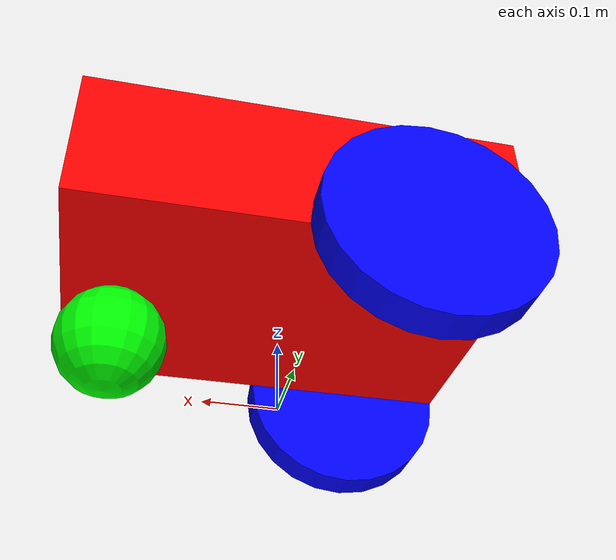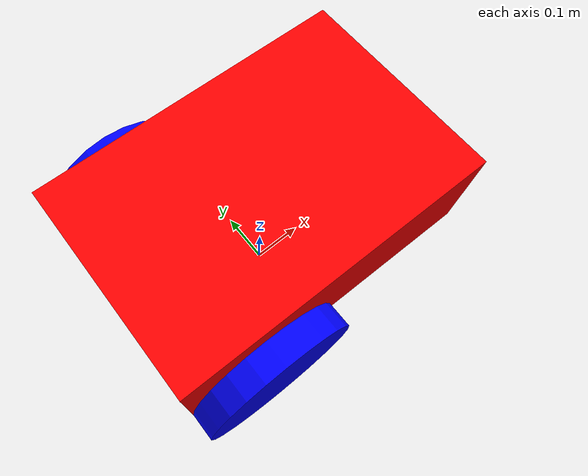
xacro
<?xml version="1.0"?>
<robot name="my_robot" xmlns:xacro="http://www.ros.org/wiki/xacro">

    <xacro:include filename="common_properties.xacro"/>
    <xacro:include filename="mobile_base.xacro"/>
    <xacro:include filename="mobile_base_gazebo.xacro"/>
    <xacro:include filename="camera.xacro"/>

</robot>

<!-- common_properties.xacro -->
<robot xmlns:xacro="http://www.ros.org/wiki/xacro">

    <material name="red">
        <color rgba="1 0 0 1"/>
    </material>

    <material name="green">
        <color rgba="0 1 0 1"/>
    </material>

    <material name="blue">
        <color rgba="0 0 1 1"/>
    </material>

    <material name="grey">
        <color rgba="0.5 0.5 0.5 1"/>
    </material>

    <xacro:property name="base_length" value="0.6"/>
    <xacro:property name="base_breadth" value="0.4"/>
    <xacro:property name="base_height" value="0.2"/>
    <xacro:property name="wheel_radius" value="0.15"/>
    <xacro:property name="wheel_length" value="0.05"/>
    <xacro:property name="caster_wheel_radius" value="${wheel_radius/2}"/>

    <xacro:macro name="box_inertia" params="m l b h xyz rpy">
        <inertial>
            <origin xyz="${xyz}" rpy="${rpy}"/>
            <mass value="${m}"/>
            <inertia ixx="${(1/12)*m*(h*h + l*l)}" ixy="0" ixz="0"
                     iyy="${(1/12)*m*(b*b + l*l)}" iyz="0"
                     izz="${(1/12)*m*(b*b + h*h)}"/>
        </inertial>
    </xacro:macro>

    <xacro:macro name="wheel_inertia" params="m l r xyz rpy">
        <inertial>
            <origin xyz="${xyz}" rpy="${rpy}"/>
            <mass value="${m}"/>
            <inertia ixx="${(1/12)*m*((3*r*r) + l*l)}" ixy="0" ixz="0"
                     iyy="${(1/12)*m*((3*r*r) + l*l)}" iyz="0"
                     izz="${(1/2)*m*r*r}"/>
        </inertial>
    </xacro:macro>

    <xacro:macro name="sphere_inertia" params="m r xyz rpy">
        <inertial>
            <origin xyz="${xyz}" rpy="${rpy}"/>
            <mass value="${m}"/>
            <inertia ixx="${(2/5)*m*r*r}" ixy="0" ixz="0"
                     iyy="${(2/5)*m*r*r}" iyz="0"
                     izz="${(2/5)*m*r*r}"/>
        </inertial>
    </xacro:macro>

    <xacro:macro name="wheel_link" params="prefix y">
        <link name="${prefix}_wheel_link">
            <visual>
                <geometry>
                    <cylinder radius="${wheel_radius}" length="${wheel_length}"/>
                </geometry>
                <origin xyz="0 ${y} 0" rpy="${pi/2} 0 0"/>
                <material name="blue"/>
            </visual>
            <collision>
                <geometry>
                    <cylinder radius="${wheel_radius}" length="${wheel_length}"/>
                </geometry>
                <origin xyz="0 ${y} 0" rpy="${pi/2} 0 0"/>
            </collision>
            <xacro:wheel_inertia m="1.0" l="${2*wheel_length}" r="${2*wheel_radius}"
                                 xyz="0 ${y} 0" rpy="${pi/2} 0 0"/>
        </link>
    </xacro:macro>

</robot>

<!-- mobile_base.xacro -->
<robot xmlns:xacro="http://www.ros.org/wiki/xacro">

    <link name="base_footprint"/>

    <link name="base_link">
        <visual>
            <geometry>
                <box size="${base_length} ${base_breadth} ${base_height}"/>
            </geometry>
            <origin xyz="0 0 ${base_height/2}" rpy="0 0 0"/>
            <material name="red"/>
        </visual>
        <collision>
            <geometry>
                <box size="${base_length} ${base_breadth} ${base_height}"/>
            </geometry>
            <origin xyz="0 0 ${base_height/2}" rpy="0 0 0"/>
        </collision>
        <xacro:box_inertia m="5.0" l="${2*base_length}" b="${2*base_breadth}" h="${2*base_height}"
                           xyz="0 0 ${base_height/2}" rpy="0 0 0"/>
    </link>

    <xacro:wheel_link prefix="right" y="-${wheel_length/2}"/>
    <xacro:wheel_link prefix="left" y="${wheel_length/2}"/>

    <link name="caster_wheel_link">
        <visual>
            <geometry>
                <sphere radius="${caster_wheel_radius}"/>
            </geometry>
            <origin xyz="0 0 0" rpy="0 0 0"/>
            <material name="green"/>
        </visual>
        <collision>
            <geometry>
                <sphere radius="${caster_wheel_radius}"/>
            </geometry>
            <origin xyz="0 0 0" rpy="0 0 0"/>
        </collision>
        <xacro:sphere_inertia m="0.5" r="${2*caster_wheel_radius}"
                              xyz="0 0 0" rpy="0 0 0"/>
    </link>

    <joint name="base_footprint_joint" type="fixed">
        <parent link="base_footprint"/>
        <child link="base_link"/>
        <origin xyz="0 0 ${wheel_radius}" rpy="0 0 0"/>
    </joint>

    <joint name="base_right_wheel_joint" type="continuous">
        <parent link="base_link"/>
        <child link="right_wheel_link"/>
        <origin xyz="-${base_length/4} -${base_breadth/2} 0" rpy="0 0 0"/>
        <axis xyz="0 1 0"/>
    </joint>

    <joint name="base_left_wheel_joint" type="continuous">
        <parent link="base_link"/>
        <child link="left_wheel_link"/>
        <origin xyz="-${base_length/4} ${base_breadth/2} 0" rpy="0 0 0"/>
        <axis xyz="0 1 0"/>
    </joint>

    <joint name="base_caster_wheel_joint" type="fixed">
        <parent link="base_link"/>
        <child link="caster_wheel_link"/>
        <origin xyz="${base_length/2 - caster_wheel_radius} 0 -${caster_wheel_radius}" rpy="0 0 0"/>
    </joint>

</robot>

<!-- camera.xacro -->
<robot xmlns:xacro="http://www.ros.org/wiki/xacro">

    <xacro:property name="camera_length" value="0.01"/>
    <xacro:property name="camera_breadth" value="0.1"/>
    <xacro:property name="camera_height" value="0.05"/>

    <link name="camera_link">
        <visual>
            <geometry>
                <box size="${camera_length} ${camera_breadth} ${camera_height}"/>
            </geometry>
            <material name="grey"/>
        </visual>
        <collision>
            <geometry>
                <box size="${camera_length} ${camera_breadth} ${camera_height}"/>
            </geometry>
        </collision>
        <xacro:box_inertia m="0.1" l="${camera_length}" b="${camera_breadth}" h="${camera_height}"
                           xyz="0 0 0" rpy="0 0 0"/>
    </link>

    <joint name="base_camera_joint" type="fixed">
        <parent link="base_link"/>
        <child link="camera_link"/>
        <origin xyz="${(base_length + camera_length) / 2.0 } 0 ${base_height / 2.0}" rpy="0 0 0"/>
    </joint>

</robot>
